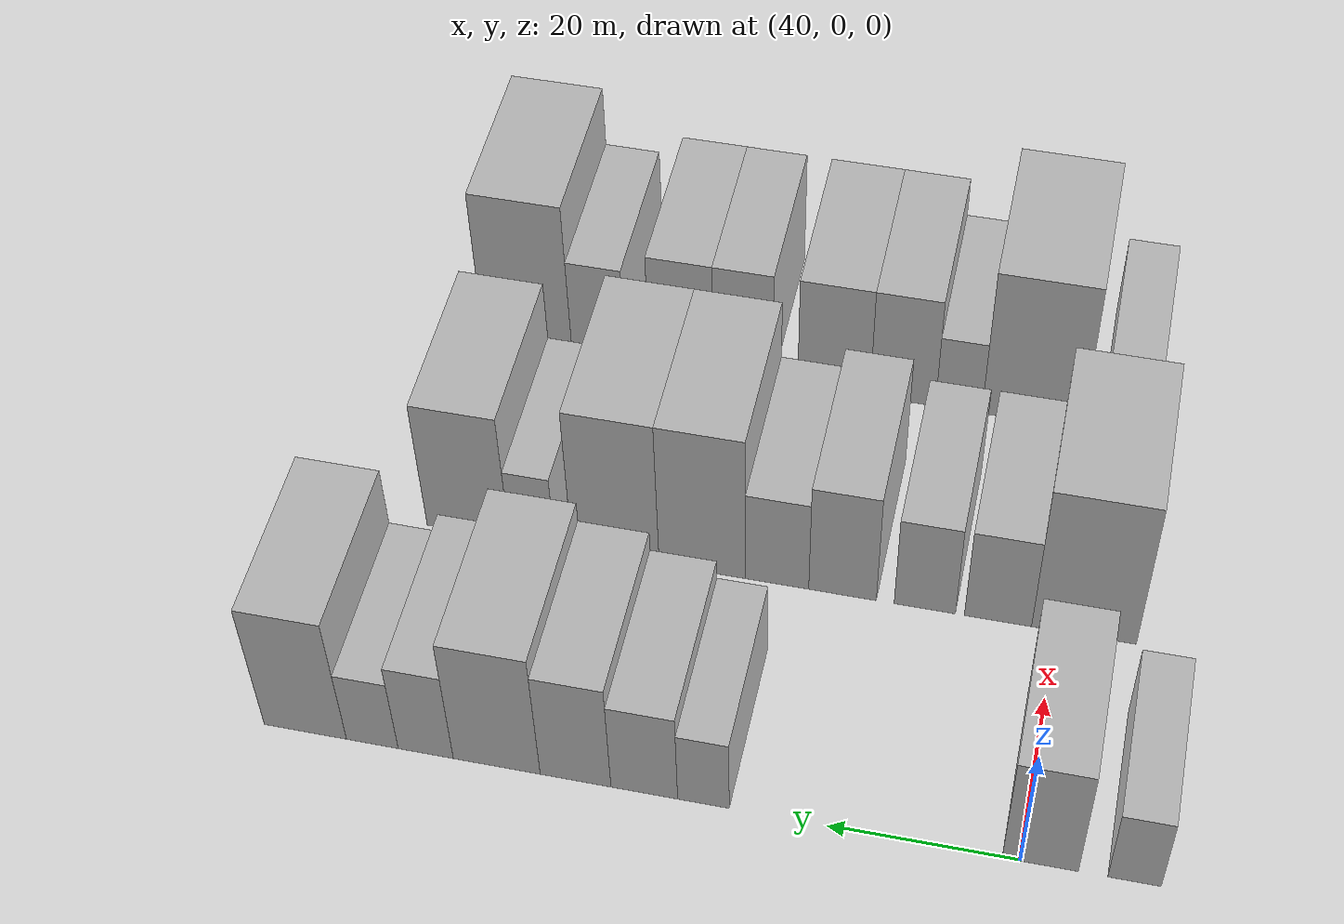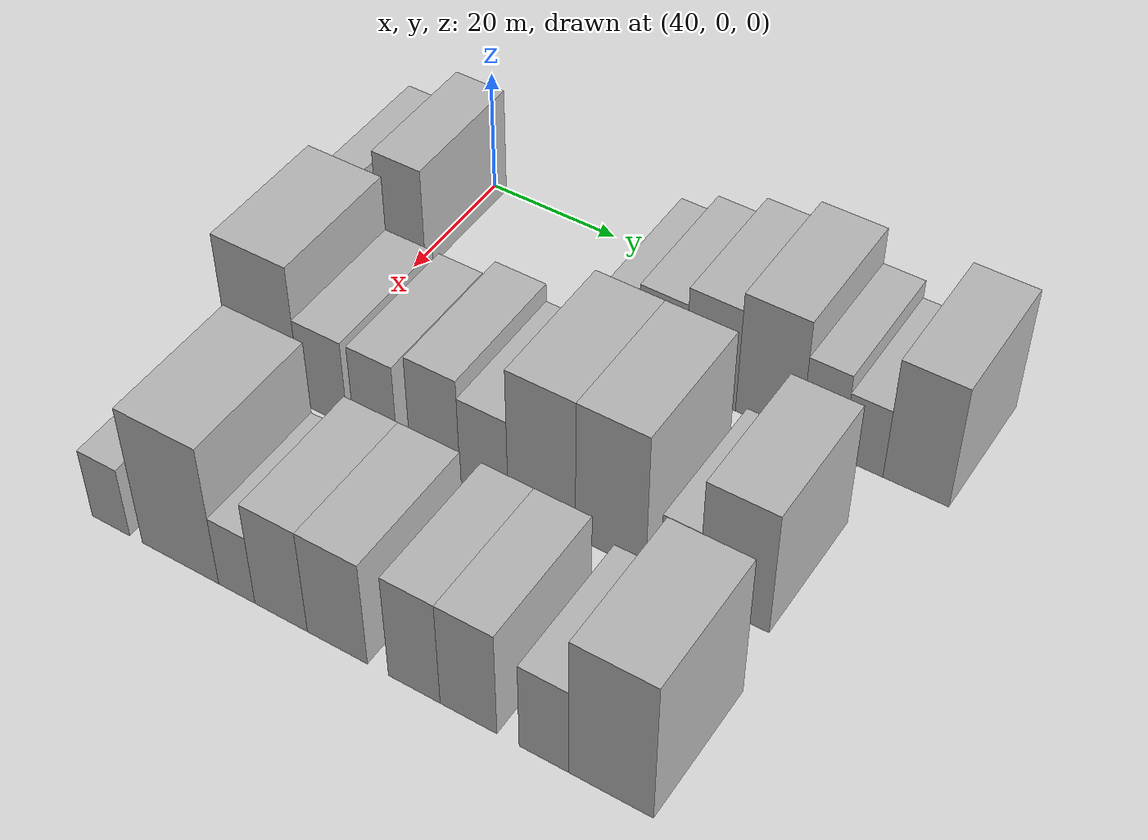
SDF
<sdf version="1.6">
 <world name="default">
  <model name="building_37">
   <static>1</static>
   <pose>50.0000 -11.6247 0 0.000000 0.000000 0.000000</pose>
   <link name="link">
    <pose>0 0 6.00 0 0 0</pose>
    <collision name="collision"><geometry><box><size>20.0000 5.4235 12.0000</size></box></geometry></collision>
    <visual name="visual">
     <cast_shadows>0</cast_shadows>
     <geometry><box><size>20.0000 5.4235 12.0000</size></box></geometry>
     <material>
      <script>
       <uri>model://HANNAS_wall/materials/scripts</uri>
       <uri>model://HANNAS_wall/materials/textures</uri>
       <name>vrc/HANNAS_wall</name>
      </script>
     </material>
    </visual>
   </link>
  </model>
  <model name="building_38">
   <static>1</static>
   <pose>50.0000 -2.0124 0 0.000000 0.000000 0.000000</pose>
   <link name="link">
    <pose>0 0 9.00 0 0 0</pose>
    <collision name="collision"><geometry><box><size>20.0000 7.8012 18.0000</size></box></geometry></collision>
    <visual name="visual">
     <cast_shadows>0</cast_shadows>
     <geometry><box><size>20.0000 7.8012 18.0000</size></box></geometry>
     <material>
      <script>
       <uri>model://HANNAS_wall/materials/scripts</uri>
       <uri>model://HANNAS_wall/materials/textures</uri>
       <name>vrc/HANNAS_wall</name>
      </script>
     </material>
    </visual>
   </link>
  </model>
  <model name="building_39">
   <static>1</static>
   <pose>50.0000 33.1125 0 0.000000 0.000000 0.000000</pose>
   <link name="link">
    <pose>0 0 6.00 0 0 0</pose>
    <collision name="collision"><geometry><box><size>20.0000 5.4829 12.0000</size></box></geometry></collision>
    <visual name="visual">
     <cast_shadows>0</cast_shadows>
     <geometry><box><size>20.0000 5.4829 12.0000</size></box></geometry>
     <material>
      <script>
       <uri>model://HANNAS_wall/materials/scripts</uri>
       <uri>model://HANNAS_wall/materials/textures</uri>
       <name>vrc/HANNAS_wall</name>
      </script>
     </material>
    </visual>
   </link>
  </model>
  <model name="building_40">
   <static>1</static>
   <pose>50.0000 39.4169 0 0.000000 0.000000 0.000000</pose>
   <link name="link">
    <pose>0 0 7.50 0 0 0</pose>
    <collision name="collision"><geometry><box><size>20.0000 7.1260 15.0000</size></box></geometry></collision>
    <visual name="visual">
     <cast_shadows>0</cast_shadows>
     <geometry><box><size>20.0000 7.1260 15.0000</size></box></geometry>
     <material>
      <script>
       <uri>model://HANNAS_wall/materials/scripts</uri>
       <uri>model://HANNAS_wall/materials/textures</uri>
       <name>vrc/HANNAS_wall</name>
      </script>
     </material>
    </visual>
   </link>
  </model>
  <model name="building_41">
   <static>1</static>
   <pose>50.0000 46.7882 0 0.000000 0.000000 0.000000</pose>
   <link name="link">
    <pose>0 0 9.00 0 0 0</pose>
    <collision name="collision"><geometry><box><size>20.0000 7.6165 18.0000</size></box></geometry></collision>
    <visual name="visual">
     <cast_shadows>0</cast_shadows>
     <geometry><box><size>20.0000 7.6165 18.0000</size></box></geometry>
     <material>
      <script>
       <uri>model://HANNAS_wall/materials/scripts</uri>
       <uri>model://HANNAS_wall/materials/textures</uri>
       <name>vrc/HANNAS_wall</name>
      </script>
     </material>
    </visual>
   </link>
  </model>
  <model name="building_42">
   <static>1</static>
   <pose>50.0000 55.3181 0 0.000000 0.000000 0.000000</pose>
   <link name="link">
    <pose>0 0 10.50 0 0 0</pose>
    <collision name="collision"><geometry><box><size>20.0000 9.4433 21.0000</size></box></geometry></collision>
    <visual name="visual">
     <cast_shadows>0</cast_shadows>
     <geometry><box><size>20.0000 9.4433 21.0000</size></box></geometry>
     <material>
      <script>
       <uri>model://HANNAS_wall/materials/scripts</uri>
       <uri>model://HANNAS_wall/materials/textures</uri>
       <name>vrc/HANNAS_wall</name>
      </script>
     </material>
    </visual>
   </link>
  </model>
  <model name="building_43">
   <static>1</static>
   <pose>50.0000 63.0514 0 0.000000 0.000000 0.000000</pose>
   <link name="link">
    <pose>0 0 7.50 0 0 0</pose>
    <collision name="collision"><geometry><box><size>20.0000 6.0235 15.0000</size></box></geometry></collision>
    <visual name="visual">
     <cast_shadows>0</cast_shadows>
     <geometry><box><size>20.0000 6.0235 15.0000</size></box></geometry>
     <material>
      <script>
       <uri>model://HANNAS_wall/materials/scripts</uri>
       <uri>model://HANNAS_wall/materials/textures</uri>
       <name>vrc/HANNAS_wall</name>
      </script>
     </material>
    </visual>
   </link>
  </model>
  <model name="building_44">
   <static>1</static>
   <pose>50.0000 68.9114 0 0.000000 0.000000 0.000000</pose>
   <link name="link">
    <pose>0 0 6.00 0 0 0</pose>
    <collision name="collision"><geometry><box><size>20.0000 5.6965 12.0000</size></box></geometry></collision>
    <visual name="visual">
     <cast_shadows>0</cast_shadows>
     <geometry><box><size>20.0000 5.6965 12.0000</size></box></geometry>
     <material>
      <script>
       <uri>model://HANNAS_wall/materials/scripts</uri>
       <uri>model://HANNAS_wall/materials/textures</uri>
       <name>vrc/HANNAS_wall</name>
      </script>
     </material>
    </visual>
   </link>
  </model>
  <model name="building_45">
   <static>1</static>
   <pose>50.0000 76.3164 0 0.000000 0.000000 0.000000</pose>
   <link name="link">
    <pose>0 0 10.50 0 0 0</pose>
    <collision name="collision"><geometry><box><size>20.0000 9.1134 21.0000</size></box></geometry></collision>
    <visual name="visual">
     <cast_shadows>0</cast_shadows>
     <geometry><box><size>20.0000 9.1134 21.0000</size></box></geometry>
     <material>
      <script>
       <uri>model://HANNAS_wall/materials/scripts</uri>
       <uri>model://HANNAS_wall/materials/textures</uri>
       <name>vrc/HANNAS_wall</name>
      </script>
     </material>
    </visual>
   </link>
  </model>
  <model name="building_115">
   <static>1</static>
   <pose>79.0000 -3.1090 0 0.000000 0.000000 0.000000</pose>
   <link name="link">
    <pose>0 0 12.00 0 0 0</pose>
    <collision name="collision"><geometry><box><size>20.0000 11.4900 24.0000</size></box></geometry></collision>
    <visual name="visual">
     <cast_shadows>0</cast_shadows>
     <geometry><box><size>20.0000 11.4900 24.0000</size></box></geometry>
     <material>
      <script>
       <uri>model://HANNAS_wall/materials/scripts</uri>
       <uri>model://HANNAS_wall/materials/textures</uri>
       <name>vrc/HANNAS_wall</name>
      </script>
     </material>
    </visual>
   </link>
  </model>
  <model name="building_116">
   <static>1</static>
   <pose>79.0000 6.3498 0 0.000000 0.000000 0.000000</pose>
   <link name="link">
    <pose>0 0 7.50 0 0 0</pose>
    <collision name="collision"><geometry><box><size>20.0000 7.4276 15.0000</size></box></geometry></collision>
    <visual name="visual">
     <cast_shadows>0</cast_shadows>
     <geometry><box><size>20.0000 7.4276 15.0000</size></box></geometry>
     <material>
      <script>
       <uri>model://HANNAS_wall/materials/scripts</uri>
       <uri>model://HANNAS_wall/materials/textures</uri>
       <name>vrc/HANNAS_wall</name>
      </script>
     </material>
    </visual>
   </link>
  </model>
  <model name="building_117">
   <static>1</static>
   <pose>79.0000 14.4755 0 0.000000 0.000000 0.000000</pose>
   <link name="link">
    <pose>0 0 7.50 0 0 0</pose>
    <collision name="collision"><geometry><box><size>20.0000 6.8240 15.0000</size></box></geometry></collision>
    <visual name="visual">
     <cast_shadows>0</cast_shadows>
     <geometry><box><size>20.0000 6.8240 15.0000</size></box></geometry>
     <material>
      <script>
       <uri>model://HANNAS_wall/materials/scripts</uri>
       <uri>model://HANNAS_wall/materials/textures</uri>
       <name>vrc/HANNAS_wall</name>
      </script>
     </material>
    </visual>
   </link>
  </model>
  <model name="building_118">
   <static>1</static>
   <pose>79.0000 23.6898 0 0.000000 0.000000 0.000000</pose>
   <link name="link">
    <pose>0 0 9.00 0 0 0</pose>
    <collision name="collision"><geometry><box><size>20.0000 7.6046 18.0000</size></box></geometry></collision>
    <visual name="visual">
     <cast_shadows>0</cast_shadows>
     <geometry><box><size>20.0000 7.6046 18.0000</size></box></geometry>
     <material>
      <script>
       <uri>model://HANNAS_wall/materials/scripts</uri>
       <uri>model://HANNAS_wall/materials/textures</uri>
       <name>vrc/HANNAS_wall</name>
      </script>
     </material>
    </visual>
   </link>
  </model>
  <model name="building_119">
   <static>1</static>
   <pose>79.0000 31.0871 0 0.000000 0.000000 0.000000</pose>
   <link name="link">
    <pose>0 0 7.50 0 0 0</pose>
    <collision name="collision"><geometry><box><size>20.0000 7.1898 15.0000</size></box></geometry></collision>
    <visual name="visual">
     <cast_shadows>0</cast_shadows>
     <geometry><box><size>20.0000 7.1898 15.0000</size></box></geometry>
     <material>
      <script>
       <uri>model://HANNAS_wall/materials/scripts</uri>
       <uri>model://HANNAS_wall/materials/textures</uri>
       <name>vrc/HANNAS_wall</name>
      </script>
     </material>
    </visual>
   </link>
  </model>
  <model name="building_120">
   <static>1</static>
   <pose>79.0000 39.5915 0 0.000000 0.000000 0.000000</pose>
   <link name="link">
    <pose>0 0 12.00 0 0 0</pose>
    <collision name="collision"><geometry><box><size>20.0000 9.8191 24.0000</size></box></geometry></collision>
    <visual name="visual">
     <cast_shadows>0</cast_shadows>
     <geometry><box><size>20.0000 9.8191 24.0000</size></box></geometry>
     <material>
      <script>
       <uri>model://HANNAS_wall/materials/scripts</uri>
       <uri>model://HANNAS_wall/materials/textures</uri>
       <name>vrc/HANNAS_wall</name>
      </script>
     </material>
    </visual>
   </link>
  </model>
  <model name="building_121">
   <static>1</static>
   <pose>79.0000 49.5161 0 0.000000 0.000000 0.000000</pose>
   <link name="link">
    <pose>0 0 12.00 0 0 0</pose>
    <collision name="collision"><geometry><box><size>20.0000 10.0301 24.0000</size></box></geometry></collision>
    <visual name="visual">
     <cast_shadows>0</cast_shadows>
     <geometry><box><size>20.0000 10.0301 24.0000</size></box></geometry>
     <material>
      <script>
       <uri>model://HANNAS_wall/materials/scripts</uri>
       <uri>model://HANNAS_wall/materials/textures</uri>
       <name>vrc/HANNAS_wall</name>
      </script>
     </material>
    </visual>
   </link>
  </model>
  <model name="building_122">
   <static>1</static>
   <pose>79.0000 59.1635 0 0.000000 0.000000 0.000000</pose>
   <link name="link">
    <pose>0 0 6.00 0 0 0</pose>
    <collision name="collision"><geometry><box><size>20.0000 5.2646 12.0000</size></box></geometry></collision>
    <visual name="visual">
     <cast_shadows>0</cast_shadows>
     <geometry><box><size>20.0000 5.2646 12.0000</size></box></geometry>
     <material>
      <script>
       <uri>model://HANNAS_wall/materials/scripts</uri>
       <uri>model://HANNAS_wall/materials/textures</uri>
       <name>vrc/HANNAS_wall</name>
      </script>
     </material>
    </visual>
   </link>
  </model>
  <model name="building_123">
   <static>1</static>
   <pose>79.0000 66.6234 0 0.000000 0.000000 0.000000</pose>
   <link name="link">
    <pose>0 0 10.50 0 0 0</pose>
    <collision name="collision"><geometry><box><size>20.0000 9.6552 21.0000</size></box></geometry></collision>
    <visual name="visual">
     <cast_shadows>0</cast_shadows>
     <geometry><box><size>20.0000 9.6552 21.0000</size></box></geometry>
     <material>
      <script>
       <uri>model://HANNAS_wall/materials/scripts</uri>
       <uri>model://HANNAS_wall/materials/textures</uri>
       <name>vrc/HANNAS_wall</name>
      </script>
     </material>
    </visual>
   </link>
  </model>
  <model name="building_186">
   <static>1</static>
   <pose>108.0000 -4.5537 0 0.000000 0.000000 0.000000</pose>
   <link name="link">
    <pose>0 0 6.00 0 0 0</pose>
    <collision name="collision"><geometry><box><size>20.0000 5.9877 12.0000</size></box></geometry></collision>
    <visual name="visual">
     <cast_shadows>0</cast_shadows>
     <geometry><box><size>20.0000 5.9877 12.0000</size></box></geometry>
     <material>
      <script>
       <uri>model://HANNAS_wall/materials/scripts</uri>
       <uri>model://HANNAS_wall/materials/textures</uri>
       <name>vrc/HANNAS_wall</name>
      </script>
     </material>
    </visual>
   </link>
  </model>
  <model name="building_187">
   <static>1</static>
   <pose>108.0000 6.3653 0 0.000000 0.000000 0.000000</pose>
   <link name="link">
    <pose>0 0 12.00 0 0 0</pose>
    <collision name="collision"><geometry><box><size>20.0000 11.8505 24.0000</size></box></geometry></collision>
    <visual name="visual">
     <cast_shadows>0</cast_shadows>
     <geometry><box><size>20.0000 11.8505 24.0000</size></box></geometry>
     <material>
      <script>
       <uri>model://HANNAS_wall/materials/scripts</uri>
       <uri>model://HANNAS_wall/materials/textures</uri>
       <name>vrc/HANNAS_wall</name>
      </script>
     </material>
    </visual>
   </link>
  </model>
  <model name="building_188">
   <static>1</static>
   <pose>108.0000 15.0396 0 0.000000 0.000000 0.000000</pose>
   <link name="link">
    <pose>0 0 6.00 0 0 0</pose>
    <collision name="collision"><geometry><box><size>20.0000 5.4981 12.0000</size></box></geometry></collision>
    <visual name="visual">
     <cast_shadows>0</cast_shadows>
     <geometry><box><size>20.0000 5.4981 12.0000</size></box></geometry>
     <material>
      <script>
       <uri>model://HANNAS_wall/materials/scripts</uri>
       <uri>model://HANNAS_wall/materials/textures</uri>
       <name>vrc/HANNAS_wall</name>
      </script>
     </material>
    </visual>
   </link>
  </model>
  <model name="building_189">
   <static>1</static>
   <pose>108.0000 21.6949 0 0.000000 0.000000 0.000000</pose>
   <link name="link">
    <pose>0 0 9.00 0 0 0</pose>
    <collision name="collision"><geometry><box><size>20.0000 7.8125 18.0000</size></box></geometry></collision>
    <visual name="visual">
     <cast_shadows>0</cast_shadows>
     <geometry><box><size>20.0000 7.8125 18.0000</size></box></geometry>
     <material>
      <script>
       <uri>model://HANNAS_wall/materials/scripts</uri>
       <uri>model://HANNAS_wall/materials/textures</uri>
       <name>vrc/HANNAS_wall</name>
      </script>
     </material>
    </visual>
   </link>
  </model>
  <model name="building_190">
   <static>1</static>
   <pose>108.0000 29.9581 0 0.000000 0.000000 0.000000</pose>
   <link name="link">
    <pose>0 0 9.00 0 0 0</pose>
    <collision name="collision"><geometry><box><size>20.0000 8.7138 18.0000</size></box></geometry></collision>
    <visual name="visual">
     <cast_shadows>0</cast_shadows>
     <geometry><box><size>20.0000 8.7138 18.0000</size></box></geometry>
     <material>
      <script>
       <uri>model://HANNAS_wall/materials/scripts</uri>
       <uri>model://HANNAS_wall/materials/textures</uri>
       <name>vrc/HANNAS_wall</name>
      </script>
     </material>
    </visual>
   </link>
  </model>
  <model name="building_191">
   <static>1</static>
   <pose>108.0000 40.9413 0 0.000000 0.000000 0.000000</pose>
   <link name="link">
    <pose>0 0 9.00 0 0 0</pose>
    <collision name="collision"><geometry><box><size>20.0000 7.2525 18.0000</size></box></geometry></collision>
    <visual name="visual">
     <cast_shadows>0</cast_shadows>
     <geometry><box><size>20.0000 7.2525 18.0000</size></box></geometry>
     <material>
      <script>
       <uri>model://HANNAS_wall/materials/scripts</uri>
       <uri>model://HANNAS_wall/materials/textures</uri>
       <name>vrc/HANNAS_wall</name>
      </script>
     </material>
    </visual>
   </link>
  </model>
  <model name="building_192">
   <static>1</static>
   <pose>108.0000 48.4687 0 0.000000 0.000000 0.000000</pose>
   <link name="link">
    <pose>0 0 9.00 0 0 0</pose>
    <collision name="collision"><geometry><box><size>20.0000 7.8025 18.0000</size></box></geometry></collision>
    <visual name="visual">
     <cast_shadows>0</cast_shadows>
     <geometry><box><size>20.0000 7.8025 18.0000</size></box></geometry>
     <material>
      <script>
       <uri>model://HANNAS_wall/materials/scripts</uri>
       <uri>model://HANNAS_wall/materials/textures</uri>
       <name>vrc/HANNAS_wall</name>
      </script>
     </material>
    </visual>
   </link>
  </model>
  <model name="building_193">
   <static>1</static>
   <pose>108.0000 58.6644 0 0.000000 0.000000 0.000000</pose>
   <link name="link">
    <pose>0 0 7.50 0 0 0</pose>
    <collision name="collision"><geometry><box><size>20.0000 6.5889 15.0000</size></box></geometry></collision>
    <visual name="visual">
     <cast_shadows>0</cast_shadows>
     <geometry><box><size>20.0000 6.5889 15.0000</size></box></geometry>
     <material>
      <script>
       <uri>model://HANNAS_wall/materials/scripts</uri>
       <uri>model://HANNAS_wall/materials/textures</uri>
       <name>vrc/HANNAS_wall</name>
      </script>
     </material>
    </visual>
   </link>
  </model>
  <model name="building_194">
   <static>1</static>
   <pose>108.0000 67.4620 0 0.000000 0.000000 0.000000</pose>
   <link name="link">
    <pose>0 0 12.00 0 0 0</pose>
    <collision name="collision"><geometry><box><size>20.0000 11.0062 24.0000</size></box></geometry></collision>
    <visual name="visual">
     <cast_shadows>0</cast_shadows>
     <geometry><box><size>20.0000 11.0062 24.0000</size></box></geometry>
     <material>
      <script>
       <uri>model://HANNAS_wall/materials/scripts</uri>
       <uri>model://HANNAS_wall/materials/textures</uri>
       <name>vrc/HANNAS_wall</name>
      </script>
     </material>
    </visual>
   </link>
  </model>
 </world>
</sdf>
